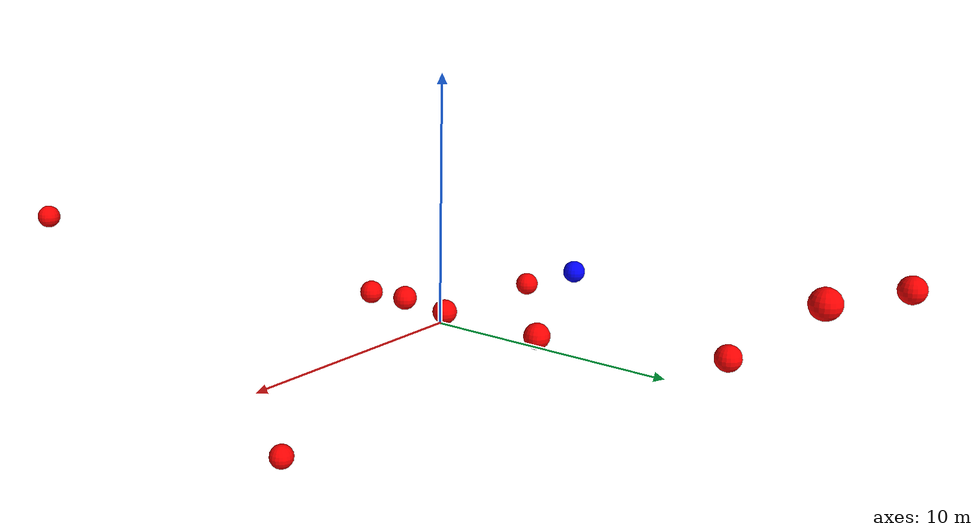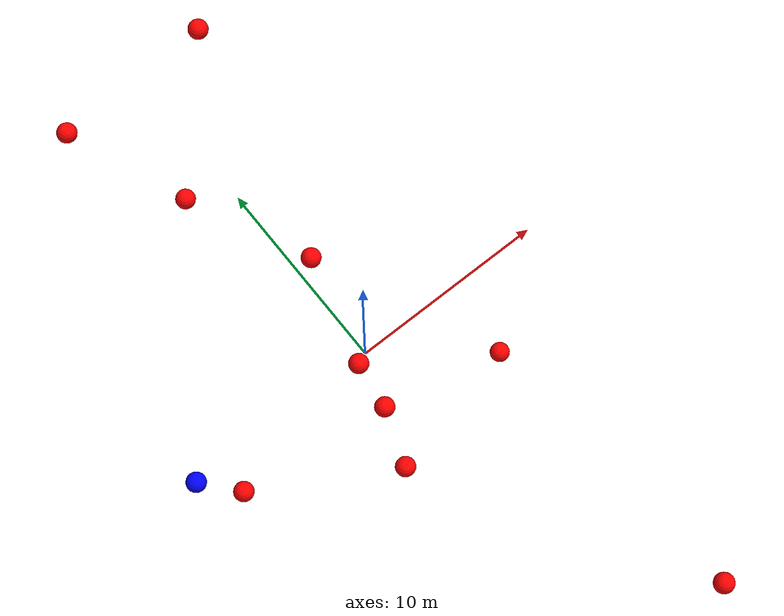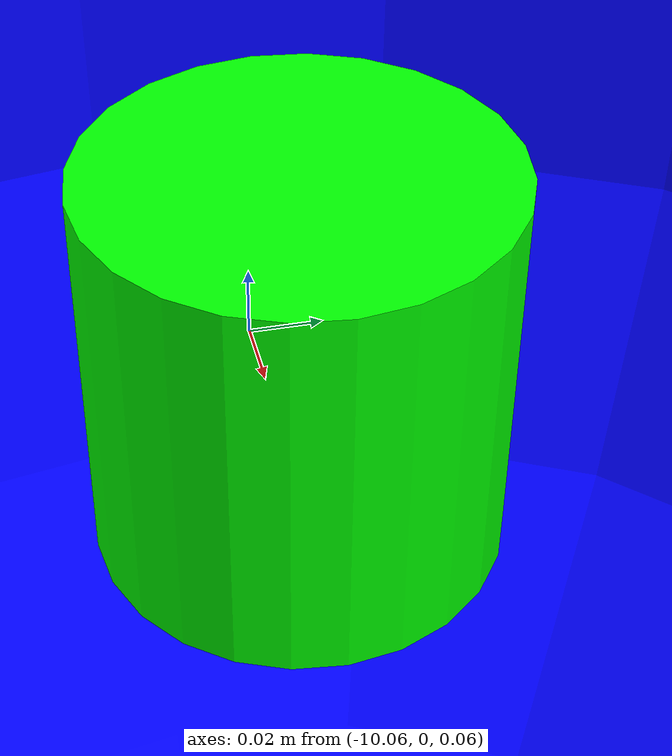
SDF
<?xml version="1.0" ?>
<sdf version="1.8">
    <world name="3d_world">
        <physics name="1ms" type="ode">
            <max_step_size>0.001</max_step_size>
            <real_time_factor>1.0</real_time_factor>
            <real_time_update_rate>1000.0</real_time_update_rate>
        </physics>
        <gravity>0 0 0</gravity>

        <plugin
            filename="gz-sim-physics-system"
            name="gz::sim::v8::systems::Physics">
        </plugin>
        <plugin
            filename="libignition-gazebo-user-commands-system.so"
            name="ignition::gazebo::systems::UserCommands">
        </plugin>
        <plugin
            filename="gz-sim-scene-broadcaster-system"
            name="gz::sim::systems::SceneBroadcaster">
        </plugin>
        <plugin
            filename="gz-sim-sensors-system"
            name="gz::sim::systems::Sensors">
            <render_engine>ogre2</render_engine>
        </plugin>

        <light type="directional" name="sun">
            <cast_shadows>true</cast_shadows>
            <pose>0 0 10 0 0 0</pose>
            <diffuse>0.8 0.8 0.8 1</diffuse>
            <specular>0.2 0.2 0.2 1</specular>
            <attenuation>
                <range>1000</range>
                <constant>0.9</constant>
                <linear>0.01</linear>
                <quadratic>0.001</quadratic>
            </attenuation>
            <direction>-0.5 0.1 -0.9</direction>
        </light>

        <!-- AGENTE -->
        <model name='agente' canonical_link='chassis'>
            <pose relative_to='world'>-10.0 0 0.0 0 0 0</pose>
            <link name='chassis'>
                <pose relative_to='__model__'>0.0 0 0.0 0 0 0</pose>
                <inertial>
                    <mass>1.14395</mass>
                    <inertia>
                        <ixx>0.095329</ixx>
                        <ixy>0</ixy>
                        <ixz>0</ixz>
                        <iyy>0.381317</iyy>
                        <iyz>0</iyz>
                        <izz>0.476646</izz>
                    </inertia>
                </inertial>
                <visual name='visual'>
                    <geometry>
                        <sphere>
                            <radius>0.5</radius>
                        </sphere>
                    </geometry>
                    <material>
                        <ambient>0.0 0.0 1.0 1</ambient>
                        <diffuse>0.0 0.0 1.0 1</diffuse>
                        <specular>0.0 0.0 1.0 1</specular>
                    </material>
                </visual>
                <collision name='collision'>
                    <geometry>
                        <sphere>
                            <radius>0.5</radius>
                        </sphere>
                    </geometry>
                </collision>
                <enable_gravity>false</enable_gravity>
            </link>

            <link name='lidar_link'>
                <pose relative_to='chassis'>0.0 0 0.1 0 0 0</pose>
                <inertial>
                    <mass>0.1</mass>
                    <inertia>
                        <ixx>0.000166667</ixx>
                        <iyy>0.000166667</iyy>
                        <izz>0.000166667</izz>
                    </inertia>
                </inertial>
                <collision name='collision'>
                    <geometry>
                        <cylinder>
                            <radius>0.05</radius>
                            <length>0.1</length>
                        </cylinder>
                    </geometry>
                </collision>
                <visual name='visual'>
                    <geometry>
                        <cylinder>
                            <radius>0.05</radius>
                            <length>0.1</length>
                        </cylinder>
                    </geometry>
                    <material>
                        <ambient>0.0 1.0 0.0 1</ambient>
                        <diffuse>0.0 1.0 0.0 1</diffuse>
                        <specular>0.0 1.0 0.0 1</specular>
                    </material>
                </visual>
                <sensor name="lidar" type="gpu_lidar">
                    <topic>scan</topic>
                    <update_rate>10</update_rate>
                    <lidar>
                        <scan>
                            <horizontal>
                                <samples>5000</samples>
                                <resolution>1</resolution>
                                <min_angle>-3.14159</min_angle>
                                <max_angle>3.14159</max_angle>
                            </horizontal>
                        </scan>
                        <range>
                            <min>0.1</min>
                            <max>10.0</max>
                            <resolution>0.01</resolution>
                        </range>
                    </lidar>
                    <visualize>true</visualize>
                    <always_on>true</always_on>
                    <update_rate>10</update_rate>
                    <pose_frame>lidar</pose_frame>
                </sensor>
                <enable_gravity>false</enable_gravity>
            </link>

            <joint name="lidar_joint" type="fixed">
                <parent>chassis</parent>
                <child>lidar_link</child>
            </joint>

            <plugin
                filename="ignition-gazebo-joint-state-publisher-system"
                name="ignition::gazebo::systems::JointStatePublisher">
            </plugin>
            <plugin
                filename="ignition-gazebo-odometry-publisher-system"
                name="ignition::gazebo::systems::OdometryPublisher">
                <dimensions>3</dimensions>
            </plugin>
            <plugin
                filename="ignition-gazebo-velocity-control-system"
                name="ignition::gazebo::systems::VelocityControl">
                <initial_linear>0.0 0 0</initial_linear>
                <initial_angular>0 0 0.0</initial_angular>
            </plugin>
            <plugin
                filename="libignition-gazebo-pose-publisher-system.so"
                name="ignition::gazebo::systems::PosePublisher">
                <topic>/agente/pose</topic>
                <frame_id>agente</frame_id>
                <update_rate>30</update_rate>
            </plugin>
        </model>

        <!-- OBSTACLE 1 -->
        <model name='obstacle_1' canonical_link='obstacle'>
            <static>false</static>
            <pose relative_to='world'>-1.89 -5.44 -0.17 0 0 0</pose>
            <link name='obstacle'>
                <pose relative_to='__model__'>0.0 0 0.0 0 0 0</pose>
                <visual name='visual'>
                    <geometry>
                        <sphere>
                            <radius>0.50</radius>
                        </sphere>
                    </geometry>
                    <material>
                        <ambient>1.0 0.0 0.0 1</ambient>
                        <diffuse>1.0 0.0 0.0 1</diffuse>
                        <specular>1.0 0.0 0.0 1</specular>
                    </material>
                </visual>
                <collision name='collision'>
                    <geometry>
                        <sphere>
                            <radius>0.50</radius>
                        </sphere>
                    </geometry>
                </collision>
                <enable_gravity>false</enable_gravity>
            </link>

            <plugin
                filename="ignition-gazebo-velocity-control-system"
                name="ignition::gazebo::systems::VelocityControl">
                <initial_linear>1.33 0.79 0.02</initial_linear>
                <initial_angular>0 0 0</initial_angular>
            </plugin>

            <plugin
                filename="ignition-gazebo-odometry-publisher-system"
                name="ignition::gazebo::systems::OdometryPublisher">
                <dimensions>3</dimensions>
            </plugin>
        </model>

        <!-- OBSTACLE 2 -->
        <model name='obstacle_2' canonical_link='obstacle'>
            <static>false</static>
            <pose relative_to='world'>0.79 5.16 0.76 0 0 0</pose>
            <link name='obstacle'>
                <pose relative_to='__model__'>0.0 0 0.0 0 0 0</pose>
                <visual name='visual'>
                    <geometry>
                        <sphere>
                            <radius>0.50</radius>
                        </sphere>
                    </geometry>
                    <material>
                        <ambient>1.0 0.0 0.0 1</ambient>
                        <diffuse>1.0 0.0 0.0 1</diffuse>
                        <specular>1.0 0.0 0.0 1</specular>
                    </material>
                </visual>
                <collision name='collision'>
                    <geometry>
                        <sphere>
                            <radius>0.50</radius>
                        </sphere>
                    </geometry>
                </collision>
                <enable_gravity>false</enable_gravity>
            </link>

            <plugin
                filename="ignition-gazebo-velocity-control-system"
                name="ignition::gazebo::systems::VelocityControl">
                <initial_linear>0.83 -0.80 -0.12</initial_linear>
                <initial_angular>0 0 0</initial_angular>
            </plugin>

            <plugin
                filename="ignition-gazebo-odometry-publisher-system"
                name="ignition::gazebo::systems::OdometryPublisher">
                <dimensions>3</dimensions>
            </plugin>
        </model>

        <!-- OBSTACLE 3 -->
        <model name='obstacle_3' canonical_link='obstacle'>
            <static>false</static>
            <pose relative_to='world'>5.51 -18.82 2.61 0 0 0</pose>
            <link name='obstacle'>
                <pose relative_to='__model__'>0.0 0 0.0 0 0 0</pose>
                <visual name='visual'>
                    <geometry>
                        <sphere>
                            <radius>0.50</radius>
                        </sphere>
                    </geometry>
                    <material>
                        <ambient>1.0 0.0 0.0 1</ambient>
                        <diffuse>1.0 0.0 0.0 1</diffuse>
                        <specular>1.0 0.0 0.0 1</specular>
                    </material>
                </visual>
                <collision name='collision'>
                    <geometry>
                        <sphere>
                            <radius>0.50</radius>
                        </sphere>
                    </geometry>
                </collision>
                <enable_gravity>false</enable_gravity>
            </link>

            <plugin
                filename="ignition-gazebo-velocity-control-system"
                name="ignition::gazebo::systems::VelocityControl">
                <initial_linear>-0.85 1.79 -0.25</initial_linear>
                <initial_angular>0 0 0</initial_angular>
            </plugin>

            <plugin
                filename="ignition-gazebo-odometry-publisher-system"
                name="ignition::gazebo::systems::OdometryPublisher">
                <dimensions>3</dimensions>
            </plugin>
        </model>

        <!-- OBSTACLE 4 -->
        <model name='obstacle_4' canonical_link='obstacle'>
            <static>false</static>
            <pose relative_to='world'>2.89 16.37 4.71 0 0 0</pose>
            <link name='obstacle'>
                <pose relative_to='__model__'>0.0 0 0.0 0 0 0</pose>
                <visual name='visual'>
                    <geometry>
                        <sphere>
                            <radius>0.50</radius>
                        </sphere>
                    </geometry>
                    <material>
                        <ambient>1.0 0.0 0.0 1</ambient>
                        <diffuse>1.0 0.0 0.0 1</diffuse>
                        <specular>1.0 0.0 0.0 1</specular>
                    </material>
                </visual>
                <collision name='collision'>
                    <geometry>
                        <sphere>
                            <radius>0.50</radius>
                        </sphere>
                    </geometry>
                </collision>
                <enable_gravity>false</enable_gravity>
            </link>

            <plugin
                filename="ignition-gazebo-velocity-control-system"
                name="ignition::gazebo::systems::VelocityControl">
                <initial_linear>-0.16 -1.92 -0.55</initial_linear>
                <initial_angular>0 0 0</initial_angular>
            </plugin>

            <plugin
                filename="ignition-gazebo-odometry-publisher-system"
                name="ignition::gazebo::systems::OdometryPublisher">
                <dimensions>3</dimensions>
            </plugin>
        </model>

        <!-- OBSTACLE 5 -->
        <model name='obstacle_5' canonical_link='obstacle'>
            <static>false</static>
            <pose relative_to='world'>-0.59 -0.26 0.27 0 0 0</pose>
            <link name='obstacle'>
                <pose relative_to='__model__'>0.0 0 0.0 0 0 0</pose>
                <visual name='visual'>
                    <geometry>
                        <sphere>
                            <radius>0.50</radius>
                        </sphere>
                    </geometry>
                    <material>
                        <ambient>1.0 0.0 0.0 1</ambient>
                        <diffuse>1.0 0.0 0.0 1</diffuse>
                        <specular>1.0 0.0 0.0 1</specular>
                    </material>
                </visual>
                <collision name='collision'>
                    <geometry>
                        <sphere>
                            <radius>0.50</radius>
                        </sphere>
                    </geometry>
                </collision>
                <enable_gravity>false</enable_gravity>
            </link>

            <plugin
                filename="ignition-gazebo-velocity-control-system"
                name="ignition::gazebo::systems::VelocityControl">
                <initial_linear>0.19 0.06 -0.07</initial_linear>
                <initial_angular>0 0 0</initial_angular>
            </plugin>

            <plugin
                filename="ignition-gazebo-odometry-publisher-system"
                name="ignition::gazebo::systems::OdometryPublisher">
                <dimensions>3</dimensions>
            </plugin>
        </model>

        <!-- OBSTACLE 6 -->
        <model name='obstacle_6' canonical_link='obstacle'>
            <static>false</static>
            <pose relative_to='world'>-4.91 16.50 3.38 0 0 0</pose>
            <link name='obstacle'>
                <pose relative_to='__model__'>0.0 0 0.0 0 0 0</pose>
                <visual name='visual'>
                    <geometry>
                        <sphere>
                            <radius>0.50</radius>
                        </sphere>
                    </geometry>
                    <material>
                        <ambient>1.0 0.0 0.0 1</ambient>
                        <diffuse>1.0 0.0 0.0 1</diffuse>
                        <specular>1.0 0.0 0.0 1</specular>
                    </material>
                </visual>
                <collision name='collision'>
                    <geometry>
                        <sphere>
                            <radius>0.50</radius>
                        </sphere>
                    </geometry>
                </collision>
                <enable_gravity>false</enable_gravity>
            </link>

            <plugin
                filename="ignition-gazebo-velocity-control-system"
                name="ignition::gazebo::systems::VelocityControl">
                <initial_linear>0.20 -1.95 -0.40</initial_linear>
                <initial_angular>0 0 0</initial_angular>
            </plugin>

            <plugin
                filename="ignition-gazebo-odometry-publisher-system"
                name="ignition::gazebo::systems::OdometryPublisher">
                <dimensions>3</dimensions>
            </plugin>
        </model>

        <!-- OBSTACLE 7 -->
        <model name='obstacle_7' canonical_link='obstacle'>
            <static>false</static>
            <pose relative_to='world'>-8.49 -1.61 -0.55 0 0 0</pose>
            <link name='obstacle'>
                <pose relative_to='__model__'>0.0 0 0.0 0 0 0</pose>
                <visual name='visual'>
                    <geometry>
                        <sphere>
                            <radius>0.50</radius>
                        </sphere>
                    </geometry>
                    <material>
                        <ambient>1.0 0.0 0.0 1</ambient>
                        <diffuse>1.0 0.0 0.0 1</diffuse>
                        <specular>1.0 0.0 0.0 1</specular>
                    </material>
                </visual>
                <collision name='collision'>
                    <geometry>
                        <sphere>
                            <radius>0.50</radius>
                        </sphere>
                    </geometry>
                </collision>
                <enable_gravity>false</enable_gravity>
            </link>

            <plugin
                filename="ignition-gazebo-velocity-control-system"
                name="ignition::gazebo::systems::VelocityControl">
                <initial_linear>1.97 0.33 0.11</initial_linear>
                <initial_angular>0 0 0</initial_angular>
            </plugin>

            <plugin
                filename="ignition-gazebo-odometry-publisher-system"
                name="ignition::gazebo::systems::OdometryPublisher">
                <dimensions>3</dimensions>
            </plugin>
        </model>

        <!-- OBSTACLE 8 -->
        <model name='obstacle_8' canonical_link='obstacle'>
            <static>false</static>
            <pose relative_to='world'>6.07 -3.07 -4.61 0 0 0</pose>
            <link name='obstacle'>
                <pose relative_to='__model__'>0.0 0 0.0 0 0 0</pose>
                <visual name='visual'>
                    <geometry>
                        <sphere>
                            <radius>0.50</radius>
                        </sphere>
                    </geometry>
                    <material>
                        <ambient>1.0 0.0 0.0 1</ambient>
                        <diffuse>1.0 0.0 0.0 1</diffuse>
                        <specular>1.0 0.0 0.0 1</specular>
                    </material>
                </visual>
                <collision name='collision'>
                    <geometry>
                        <sphere>
                            <radius>0.50</radius>
                        </sphere>
                    </geometry>
                </collision>
                <enable_gravity>false</enable_gravity>
            </link>

            <plugin
                filename="ignition-gazebo-velocity-control-system"
                name="ignition::gazebo::systems::VelocityControl">
                <initial_linear>-0.10 0.50 0.75</initial_linear>
                <initial_angular>0 0 0</initial_angular>
            </plugin>

            <plugin
                filename="ignition-gazebo-odometry-publisher-system"
                name="ignition::gazebo::systems::OdometryPublisher">
                <dimensions>3</dimensions>
            </plugin>
        </model>

        <!-- OBSTACLE 9 -->
        <model name='obstacle_9' canonical_link='obstacle'>
            <static>false</static>
            <pose relative_to='world'>-0.94 -2.68 0.31 0 0 0</pose>
            <link name='obstacle'>
                <pose relative_to='__model__'>0.0 0 0.0 0 0 0</pose>
                <visual name='visual'>
                    <geometry>
                        <sphere>
                            <radius>0.50</radius>
                        </sphere>
                    </geometry>
                    <material>
                        <ambient>1.0 0.0 0.0 1</ambient>
                        <diffuse>1.0 0.0 0.0 1</diffuse>
                        <specular>1.0 0.0 0.0 1</specular>
                    </material>
                </visual>
                <collision name='collision'>
                    <geometry>
                        <sphere>
                            <radius>0.50</radius>
                        </sphere>
                    </geometry>
                </collision>
                <enable_gravity>false</enable_gravity>
            </link>

            <plugin
                filename="ignition-gazebo-velocity-control-system"
                name="ignition::gazebo::systems::VelocityControl">
                <initial_linear>1.18 0.39 -0.04</initial_linear>
                <initial_angular>0 0 0</initial_angular>
            </plugin>

            <plugin
                filename="ignition-gazebo-odometry-publisher-system"
                name="ignition::gazebo::systems::OdometryPublisher">
                <dimensions>3</dimensions>
            </plugin>
        </model>

        <!-- OBSTACLE 10 -->
        <model name='obstacle_10' canonical_link='obstacle'>
            <static>false</static>
            <pose relative_to='world'>-2.09 11.36 0.53 0 0 0</pose>
            <link name='obstacle'>
                <pose relative_to='__model__'>0.0 0 0.0 0 0 0</pose>
                <visual name='visual'>
                    <geometry>
                        <sphere>
                            <radius>0.50</radius>
                        </sphere>
                    </geometry>
                    <material>
                        <ambient>1.0 0.0 0.0 1</ambient>
                        <diffuse>1.0 0.0 0.0 1</diffuse>
                        <specular>1.0 0.0 0.0 1</specular>
                    </material>
                </visual>
                <collision name='collision'>
                    <geometry>
                        <sphere>
                            <radius>0.50</radius>
                        </sphere>
                    </geometry>
                </collision>
                <enable_gravity>false</enable_gravity>
            </link>

            <plugin
                filename="ignition-gazebo-velocity-control-system"
                name="ignition::gazebo::systems::VelocityControl">
                <initial_linear>-0.02 -2.00 -0.09</initial_linear>
                <initial_angular>0 0 0</initial_angular>
            </plugin>

            <plugin
                filename="ignition-gazebo-odometry-publisher-system"
                name="ignition::gazebo::systems::OdometryPublisher">
                <dimensions>3</dimensions>
            </plugin>
        </model>

    </world>
</sdf>
